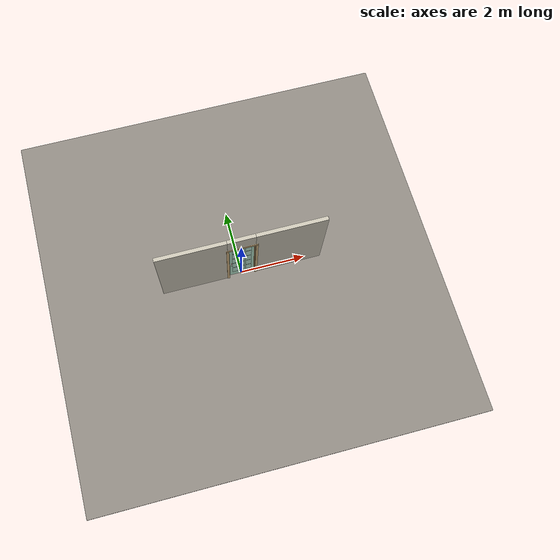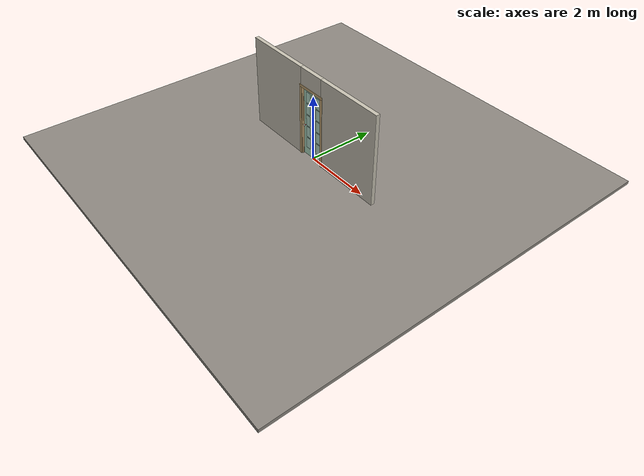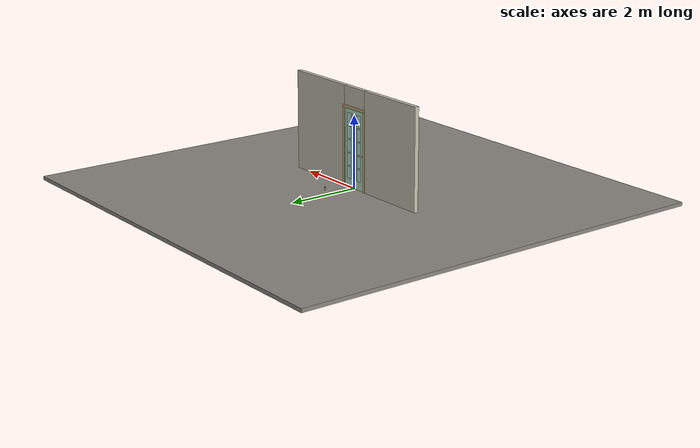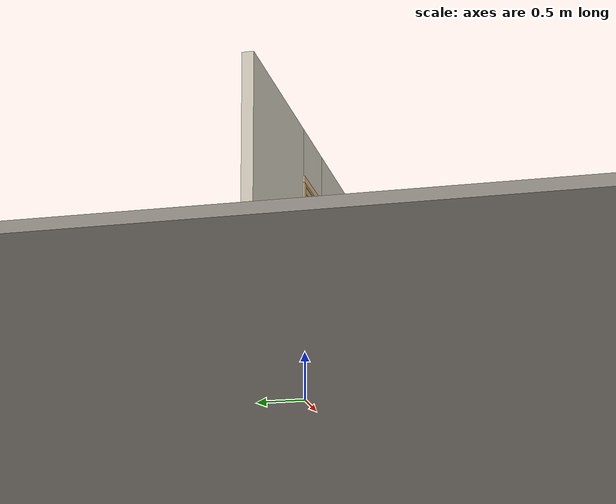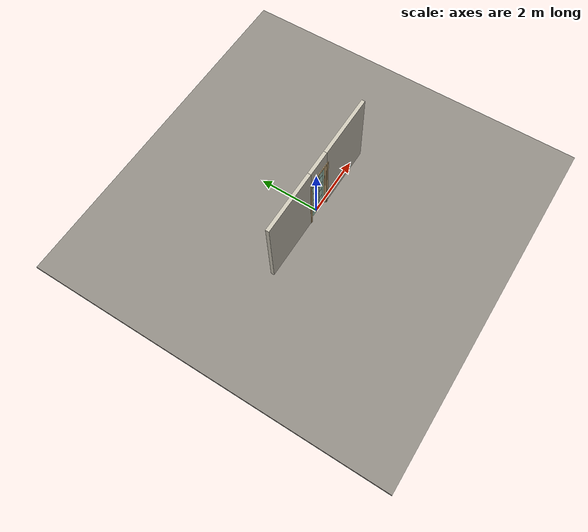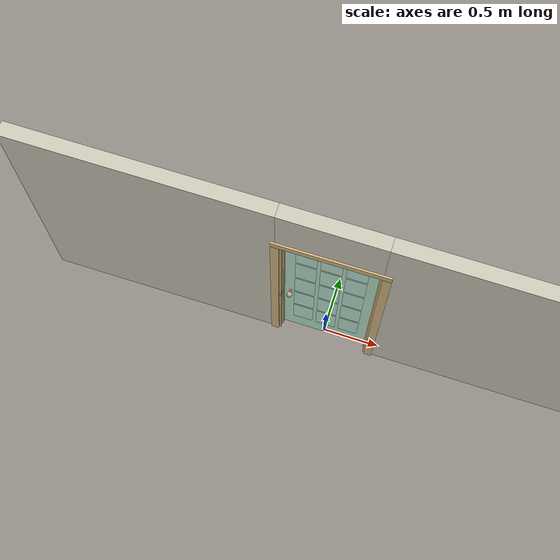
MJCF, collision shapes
<?xml version="1.0" ?>
<mujoco model="db0572_swing_single_full">
  <compiler angle="radian" meshdir="../../hardware" texturedir="../../textures" autolimits="true" inertiafromgeom="false"/>
  <option timestep="0.002" integrator="implicitfast" cone="elliptic" impratio="10" noslip_iterations="3">
    <flag multiccd="enable"/>
  </option>
  <size memory="16M"/>
  <default>
    <geom condim="4" solref="0.005 1" solimp="0.95 0.99 0.001"/>
    <joint solreflimit="0.005 1" solimplimit="0.95 0.99 0.001"/>
    <tendon solreflimit="0.005 1"/>
    <equality solref="0.002 1"/>
  </default>
  <visual>
    <headlight ambient="0.4 0.4 0.4" diffuse="0.7 0.7 0.7" specular="0.2 0.2 0.2"/>
    <quality shadowsize="4096"/>
    <map znear="0.01" zfar="60"/>
  </visual>
  <asset>
    <mesh name="hinge_e3fd49fe13" file="hinge_e3fd49fe13.obj"/>
    <mesh name="hinge_jamb_e47eb19c39" file="hinge_jamb_e47eb19c39.obj"/>
    <mesh name="knob_248d825e64" file="knob_248d825e64.obj"/>
    <mesh name="knob_d1888f6f03" file="knob_d1888f6f03.obj"/>
    <material name="mat_floor" rgba="0.55 0.53 0.5 1" specular="0.2" shininess="0.15" reflectance="0"/>
    <material name="mat_wall" rgba="0.78 0.76 0.7 1" specular="0.2" shininess="0.1" reflectance="0"/>
    <material name="mat_leaf" rgba="0.7 0.88 0.78 1" specular="0.2" shininess="0.33" reflectance="0"/>
    <material name="mat_glass" rgba="0.85 0.92 0.95 0.25" specular="0.2" shininess="0.95" reflectance="0.1"/>
    <material name="mat_hinge" rgba="0.65 0.66 0.68 1" specular="0.74" shininess="0.5" reflectance="0.36"/>
    <material name="mat_op_nickel_satin" rgba="0.72 0.7 0.66 1" specular="0.8" shininess="0.65" reflectance="0.4"/>
    <material name="mat_trim" rgba="0.85 0.66 0.3 1" specular="0.8" shininess="0.75" reflectance="0.4"/>
    <material name="mat_bolt" rgba="0.85 0.66 0.3 1" specular="0.8" shininess="0.75" reflectance="0.4"/>
    <material name="mat_frame" rgba="0.82 0.7 0.5 1" specular="0.2" shininess="0.45" reflectance="0"/>
    <material name="mat_bumper_stop" rgba="0.08 0.08 0.08 1" specular="0.2" shininess="0.1" reflectance="0"/>
    <material name="mat_stop_base" rgba="0.9 0.9 0.92 1" specular="0.8" shininess="0.9" reflectance="0.4"/>
    <texture name="skybox" type="skybox" builtin="gradient" rgb1="0.6 0.7 0.85" rgb2="0.9 0.92 0.95" width="256" height="256"/>
  </asset>
  <worldbody>
    <light name="sun" pos="1.5 -2.5 4" dir="-0.3 0.5 -0.8" directional="true" diffuse="0.8 0.8 0.8" specular="0.3 0.3 0.3" castshadow="true"/>
    <light name="fill" pos="-1.5 2.5 3" dir="0.3 -0.5 -0.7" directional="true" diffuse="0.35 0.35 0.4" castshadow="false"/>
    <camera name="robot_view" pos="0 -2.670812 1.812087" xyaxes="1 0 0 0 0.26963 0.962964" fovy="52"/>
    <camera name="far_view" pos="0 2.604812 1.812087" xyaxes="-1 0 0 0 -0.26963 0.962964" fovy="52"/>
    <camera name="iso" pos="-2.004737 -2.248762 2.234138" xyaxes="0.741536 -0.670913 0 0.242917 0.268487 0.932151" fovy="46"/>
    <camera name="detail_handle" pos="-0.1405 -0.864 1.245" xyaxes="0.97561 0.219512 0 -0.070934 0.315262 0.94635" fovy="38"/>
    <geom name="floor" type="box" size="6 6 0.05" pos="0 0 -0.05" material="mat_floor" group="0" contype="1" conaffinity="1" friction="0.8 0.005 0.0001" density="2400"/>
    <geom name="wall_left" type="box" size="1.03325 0.0575 1.3735" pos="-1.46675 -0.033 1.3735" material="mat_wall" group="0" contype="1" conaffinity="1" friction="0.6 0.005 0.0001" density="800"/>
    <geom name="wall_right" type="box" size="1.04825 0.0575 1.3735" pos="1.45175 -0.033 1.3735" material="mat_wall" group="0" contype="1" conaffinity="1" friction="0.6 0.005 0.0001" density="800"/>
    <geom name="wall_header" type="box" size="0.4185 0.0575 0.2755" pos="-0.015 -0.033 2.4715" material="mat_wall" group="0" contype="1" conaffinity="1" friction="0.6 0.005 0.0001" density="800"/>
    <geom name="hinge_0_jamb" type="mesh" mesh="hinge_jamb_e47eb19c39" pos="0.3815 0.0245 0.259" quat="0 0 0 1" material="mat_hinge" group="1" contype="0" conaffinity="0" density="7850"/>
    <geom name="hinge_1_jamb" type="mesh" mesh="hinge_jamb_e47eb19c39" pos="0.3815 0.0245 1.076" quat="0 0 0 1" material="mat_hinge" group="1" contype="0" conaffinity="0" density="7850"/>
    <geom name="hinge_2_jamb" type="mesh" mesh="hinge_jamb_e47eb19c39" pos="0.3815 0.0245 1.963" quat="0 0 0 1" material="mat_hinge" group="1" contype="0" conaffinity="0" density="7850"/>
    <geom name="jamb_hinge" type="box" size="0.0095 0.0575 1.0735" pos="0.394 -0.033 1.0735" material="mat_frame" group="0" contype="1" conaffinity="1" friction="0.6 0.005 0.0001" density="400"/>
    <geom name="strike_965_wall_n" type="box" size="0.0245 0.041325 0.0167" pos="-0.409 -0.049175 0.965" material="mat_frame" group="0" contype="1" conaffinity="1" friction="0.6 0.005 0.0001" density="400"/>
    <geom name="strike_965_wall_p" type="box" size="0.0245 0.008 0.0167" pos="-0.409 0.01585 0.965" material="mat_frame" group="0" contype="1" conaffinity="1" friction="0.6 0.005 0.0001" density="400"/>
    <geom name="strike_965_ramp" type="box" size="0.0245 0.01649 0.0167" pos="-0.413636 0.028673 0.965" quat="0.977148 0 0 0.212558" material="mat_frame" group="0" contype="1" conaffinity="1" friction="0.12 0.005 0.0001" density="400"/>
    <geom name="strike_965_back" type="box" size="0.01615 0.00785 0.0167" pos="-0.41735 0 0.965" material="mat_frame" group="0" contype="1" conaffinity="1" friction="0.6 0.005 0.0001" density="400"/>
    <geom name="jamb_strike_0" type="box" size="0.0245 0.0575 0.47415" pos="-0.409 -0.033 0.47415" material="mat_frame" group="0" contype="1" conaffinity="1" friction="0.6 0.005 0.0001" density="400"/>
    <geom name="jamb_strike_1" type="box" size="0.0245 0.0575 0.58265" pos="-0.409 -0.033 1.56435" material="mat_frame" group="0" contype="1" conaffinity="1" friction="0.6 0.005 0.0001" density="400"/>
    <geom name="jamb_head" type="box" size="0.4185 0.0575 0.0095" pos="-0.015 -0.033 2.1565" material="mat_frame" group="0" contype="1" conaffinity="1" friction="0.6 0.005 0.0001" density="400"/>
    <geom name="head_stud" type="box" size="0.4185 0.0575 0.015" pos="-0.015 -0.033 2.181" material="mat_wall" group="0" contype="1" conaffinity="1" friction="0.6 0.005 0.0001" density="500"/>
    <geom name="stop_hinge" type="box" size="0.0055 0.016 1.0735" pos="0.379 -0.034 1.0735" material="mat_frame" group="0" contype="1" conaffinity="1" friction="0.6 0.005 0.0001" density="400"/>
    <geom name="stop_strike" type="box" size="0.0055 0.016 1.0735" pos="-0.379 -0.034 1.0735" material="mat_frame" group="0" contype="1" conaffinity="1" friction="0.6 0.005 0.0001" density="400"/>
    <geom name="stop_head" type="box" size="0.3845 0.016 0.0055" pos="0 -0.034 2.1415" material="mat_frame" group="0" contype="1" conaffinity="1" friction="0.6 0.005 0.0001" density="400"/>
    <geom name="casing_l_n" type="box" size="0.035 0.008 1.083" pos="-0.4335 -0.0985 1.0735" material="mat_frame" group="2" contype="0" conaffinity="0" density="400"/>
    <geom name="casing_r_n" type="box" size="0.035 0.008 1.083" pos="0.4335 -0.0985 1.0735" material="mat_frame" group="2" contype="0" conaffinity="0" density="400"/>
    <geom name="casing_h_n" type="box" size="0.4685 0.008 0.035" pos="0 -0.0985 2.196" material="mat_frame" group="2" contype="0" conaffinity="0" density="400"/>
    <geom name="casing_l_p" type="box" size="0.035 0.008 1.083" pos="-0.4335 0.0325 1.0735" material="mat_frame" group="2" contype="0" conaffinity="0" density="400"/>
    <geom name="casing_r_p" type="box" size="0.035 0.008 1.083" pos="0.4335 0.0325 1.0735" material="mat_frame" group="2" contype="0" conaffinity="0" density="400"/>
    <geom name="casing_h_p" type="box" size="0.4685 0.008 0.035" pos="0 0.0325 2.196" material="mat_frame" group="2" contype="0" conaffinity="0" density="400"/>
    <geom name="door_stop_base" type="cylinder" size="0.022 0.003" pos="0.3975 0.6722 0.003" material="mat_stop_base" group="0" contype="1" conaffinity="1" friction="0.6 0.005 0.0001" density="7850"/>
    <geom name="door_stop_post" type="cylinder" size="0.012 0.0245" pos="0.3975 0.6722 0.0305" material="mat_stop_base" group="0" contype="1" conaffinity="1" friction="0.6 0.005 0.0001" density="7850"/>
    <geom name="door_stop_bumper" type="cylinder" size="0.022 0.02" pos="0.3975 0.6722 0.075" material="mat_bumper_stop" group="0" contype="1" conaffinity="1" friction="0.6 0.005 0.0001" density="1100"/>
    <site name="approach_point" pos="0 -1.5 0" quat="1 0 0 0" size="0.05" rgba="0.2 0.9 0.2 0.5" group="4"/>
    <site name="goal_point" pos="0 1.5 0" quat="1 0 0 0" size="0.05" rgba="0.2 0.9 0.2 0.5" group="4"/>
    <site name="door_plane_center" pos="0 0 1.0735" quat="1 0 0 0" size="0.02" rgba="0.2 0.9 0.2 0.5" group="4"/>
    <body name="leaf" pos="0.3845 0 0">
      <inertial pos="-0.348823 0.001564 1.078276" mass="19.72389" quat="0.498242 0.50301 -0.496939 0.501784" diaginertia="1.114954537 7.661812748 8.771835416"/>
      <joint name="leaf_hinge" type="hinge" axis="0 0 -1" pos="-0.003 0.0245 0" limited="true" range="0 1.570796" damping="0.179937" frictionloss="0.166613" armature="0.02"/>
      <geom name="leaf_slab" type="box" size="0.381 0.0175 1.067" pos="-0.384 0 1.076" material="mat_leaf" group="0" contype="1" conaffinity="1" friction="0.35 0.005 0.0001" density="1"/>
      <geom name="leaf_glass_0" type="box" size="0.087 0.0183 0.167256" pos="-0.18 0 0.410996" material="mat_glass" group="1" contype="0" conaffinity="0" density="1"/>
      <geom name="leaf_glass_1" type="box" size="0.087 0.0183 0.167256" pos="-0.384 0 0.410996" material="mat_glass" group="1" contype="0" conaffinity="0" density="1"/>
      <geom name="leaf_glass_2" type="box" size="0.087 0.0183 0.167256" pos="-0.588 0 0.410996" material="mat_glass" group="1" contype="0" conaffinity="0" density="1"/>
      <geom name="leaf_glass_3" type="box" size="0.087 0.0183 0.167256" pos="-0.18 0 0.775508" material="mat_glass" group="1" contype="0" conaffinity="0" density="1"/>
      <geom name="leaf_glass_4" type="box" size="0.087 0.0183 0.167256" pos="-0.384 0 0.775508" material="mat_glass" group="1" contype="0" conaffinity="0" density="1"/>
      <geom name="leaf_glass_5" type="box" size="0.087 0.0183 0.167256" pos="-0.588 0 0.775508" material="mat_glass" group="1" contype="0" conaffinity="0" density="1"/>
      <geom name="leaf_glass_6" type="box" size="0.087 0.0183 0.167256" pos="-0.18 0 1.14002" material="mat_glass" group="1" contype="0" conaffinity="0" density="1"/>
      <geom name="leaf_glass_7" type="box" size="0.087 0.0183 0.167256" pos="-0.384 0 1.14002" material="mat_glass" group="1" contype="0" conaffinity="0" density="1"/>
      <geom name="leaf_glass_8" type="box" size="0.087 0.0183 0.167256" pos="-0.588 0 1.14002" material="mat_glass" group="1" contype="0" conaffinity="0" density="1"/>
      <geom name="leaf_glass_9" type="box" size="0.087 0.0183 0.167256" pos="-0.18 0 1.504532" material="mat_glass" group="1" contype="0" conaffinity="0" density="1"/>
      <geom name="leaf_glass_10" type="box" size="0.087 0.0183 0.167256" pos="-0.384 0 1.504532" material="mat_glass" group="1" contype="0" conaffinity="0" density="1"/>
      <geom name="leaf_glass_11" type="box" size="0.087 0.0183 0.167256" pos="-0.588 0 1.504532" material="mat_glass" group="1" contype="0" conaffinity="0" density="1"/>
      <geom name="leaf_glass_12" type="box" size="0.087 0.0183 0.167256" pos="-0.18 0 1.869044" material="mat_glass" group="1" contype="0" conaffinity="0" density="1"/>
      <geom name="leaf_glass_13" type="box" size="0.087 0.0183 0.167256" pos="-0.384 0 1.869044" material="mat_glass" group="1" contype="0" conaffinity="0" density="1"/>
      <geom name="leaf_glass_14" type="box" size="0.087 0.0183 0.167256" pos="-0.588 0 1.869044" material="mat_glass" group="1" contype="0" conaffinity="0" density="1"/>
      <geom name="hinge_0" type="mesh" mesh="hinge_e3fd49fe13" pos="-0.003 0.0245 0.259" quat="0 0 0 1" material="mat_hinge" group="1" contype="0" conaffinity="0" density="7850"/>
      <geom name="hinge_1" type="mesh" mesh="hinge_e3fd49fe13" pos="-0.003 0.0245 1.076" quat="0 0 0 1" material="mat_hinge" group="1" contype="0" conaffinity="0" density="7850"/>
      <geom name="hinge_2" type="mesh" mesh="hinge_e3fd49fe13" pos="-0.003 0.0245 1.963" quat="0 0 0 1" material="mat_hinge" group="1" contype="0" conaffinity="0" density="7850"/>
      <geom name="leaf_latch_bolt_faceplate" type="box" size="0.0006 0.01235 0.0267" pos="-0.7644 0 0.965" material="mat_bolt" group="1" contype="0" conaffinity="0" density="8500"/>
      <site name="leaf_edge_mid" pos="-0.765 0 1.067" quat="1 0 0 0" size="0.02" rgba="0.2 0.9 0.2 0.5" group="4"/>
      <body name="leaf_handle" pos="-0.705 0 0.965">
        <inertial pos="0 -0.000216 0" mass="1.146661" quat="0.5 0.5 0.5 0.5" diaginertia="0.000312402 0.003728942 0.003728942"/>
        <joint name="leaf_handle_hinge" type="hinge" axis="0 1 0" limited="true" range="0 0.87" damping="0.143613" frictionloss="0.038" stiffness="0.5" springref="-0.5" armature="0.01"/>
        <geom name="leaf_handle_spindle" type="cylinder" size="0.006 0.0255" pos="0 0 0" quat="0.707107 -0.707107 0 0" material="mat_op_nickel_satin" group="1" contype="0" conaffinity="0" density="7850"/>
        <geom name="leaf_handle_knob_n" type="mesh" mesh="knob_248d825e64" pos="0 -0.0175 0" quat="0 0 -0.707107 0.707107" material="mat_op_nickel_satin" group="1" contype="0" conaffinity="0" density="3000"/>
        <geom name="leaf_handle_knob_col_n" type="sphere" size="0.0243" pos="0 -0.064 0" material="mat_op_nickel_satin" group="0" contype="1" conaffinity="1" friction="0.9 0.01 0.0001" density="3000"/>
        <geom name="leaf_handle_knob_neck_n" type="cylinder" size="0.011 0.012" pos="0 -0.0295 0" quat="0.707107 -0.707107 0 0" material="mat_op_nickel_satin" group="3" contype="1" conaffinity="1" rgba="0.8 0.3 0.3 0.25" friction="0.6 0.005 0.0001" density="3000"/>
        <geom name="leaf_handle_knob_p" type="mesh" mesh="knob_d1888f6f03" pos="0 0.0175 0" quat="0 0 0.707107 0.707107" material="mat_op_nickel_satin" group="1" contype="0" conaffinity="0" density="3000"/>
        <geom name="leaf_handle_knob_col_p" type="sphere" size="0.0243" pos="0 0.064 0" material="mat_op_nickel_satin" group="0" contype="1" conaffinity="1" friction="0.9 0.01 0.0001" density="3000"/>
        <geom name="leaf_handle_knob_neck_p" type="cylinder" size="0.011 0.012" pos="0 0.0295 0" quat="0.707107 -0.707107 0 0" material="mat_op_nickel_satin" group="3" contype="1" conaffinity="1" rgba="0.8 0.3 0.3 0.25" friction="0.6 0.005 0.0001" density="3000"/>
        <site name="leaf_handle_grip_n" pos="0 -0.064 0" quat="1 0 0 0" size="0.012" rgba="0.2 0.9 0.2 0.5" group="4"/>
        <site name="leaf_handle_grip_p" pos="0 0.064 0" quat="1 0 0 0" size="0.012" rgba="0.2 0.9 0.2 0.5" group="4"/>
      </body>
      <body name="leaf_latch_bolt" pos="-0.765 0 0.965">
        <inertial pos="0.00865 0 0" mass="0.041419" quat="0.92388 0.382683 0 0" diaginertia="0.000000798 0.000005598 0.000005598"/>
        <joint name="leaf_latch_bolt_slide" type="slide" axis="1 0 0" limited="true" range="0 0.0127" damping="2" frictionloss="0.3" stiffness="300" springref="-0.008333" armature="0.1"/>
        <geom name="leaf_latch_bolt_capsule" type="capsule" size="0.00635 0.015" pos="0.00865 0 0" quat="0.707107 0 -0.707107 0" material="mat_bolt" group="0" contype="1" conaffinity="1" friction="0.2 0.005 0.0001" density="8500"/>
      </body>
    </body>
  </worldbody>
  <tendon>
    <fixed name="leaf_latch_bolt_coupling" limited="true" range="0 10">
      <joint joint="leaf_latch_bolt_slide" coef="1"/>
      <joint joint="leaf_handle_hinge" coef="-0.015679"/>
    </fixed>
  </tendon>
  <sensor>
    <jointpos name="leaf_hinge_pos" joint="leaf_hinge"/>
    <jointvel name="leaf_hinge_vel" joint="leaf_hinge"/>
    <jointpos name="leaf_handle_hinge_pos" joint="leaf_handle_hinge"/>
    <jointvel name="leaf_handle_hinge_vel" joint="leaf_handle_hinge"/>
    <jointpos name="leaf_latch_bolt_slide_pos" joint="leaf_latch_bolt_slide"/>
    <jointvel name="leaf_latch_bolt_slide_vel" joint="leaf_latch_bolt_slide"/>
  </sensor>
</mujoco>
